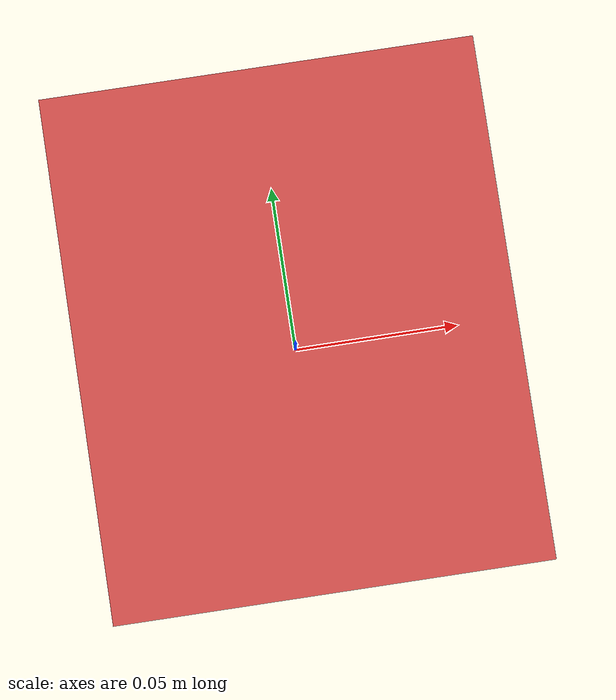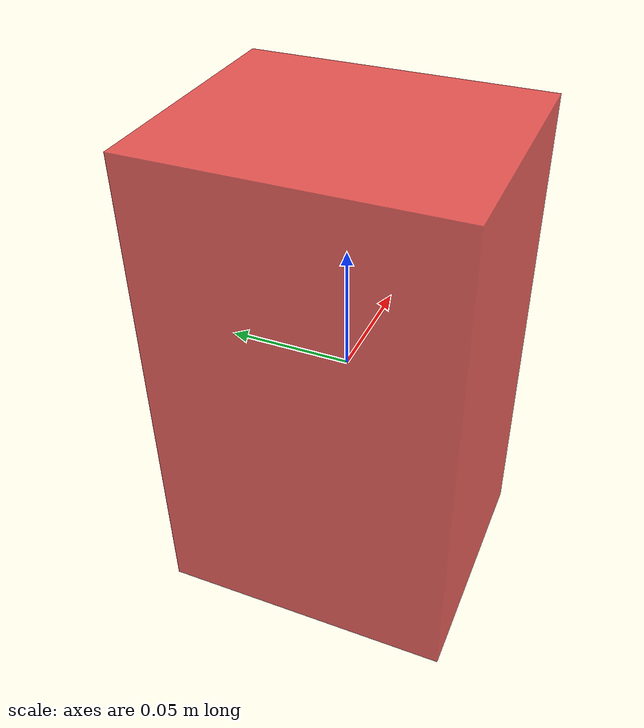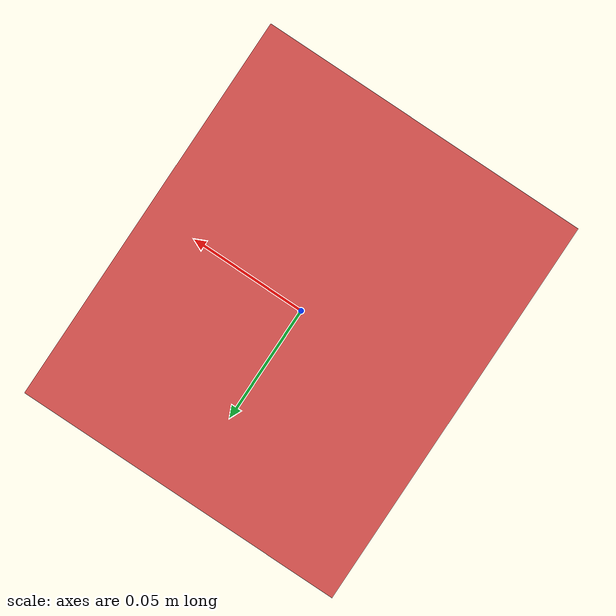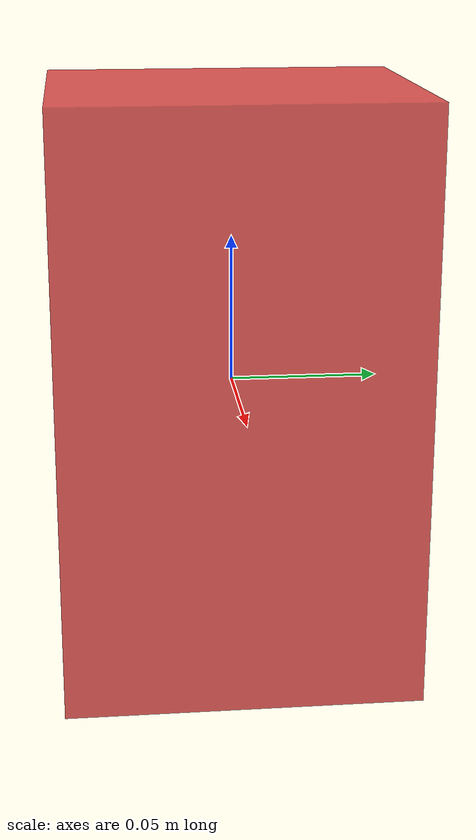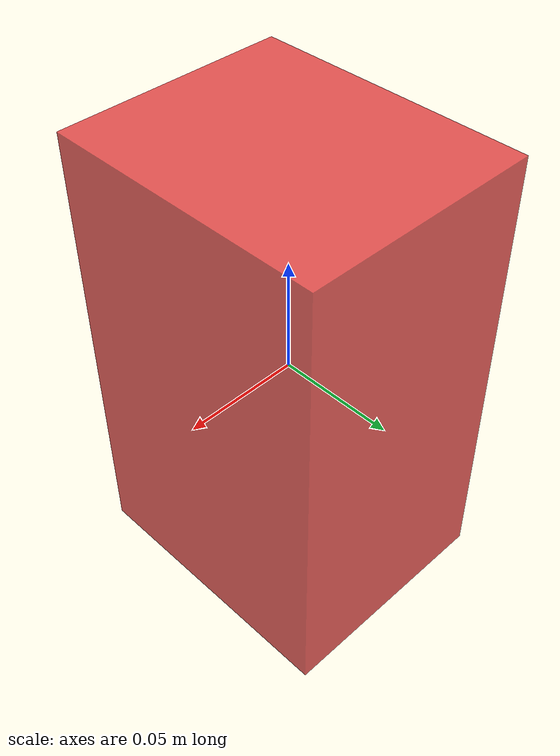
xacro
<?xml version="1.0"?>

<robot xmlns:xacro="http://www.ros.org/wiki/xacro" name="dynamic_obstacle">

  <xacro:property name="obstacle_name" value="dynamic_obstacle" />
  <xacro:property name="length" value="0.12" />
  <xacro:property name="width" value="0.1" />
  <xacro:property name="height" value="0.2" />

  <link name="${obstacle_name}/base_link">
    <visual>
      <geometry>
        <box size="${width} ${length} ${height}"/>
      </geometry>
      <material name="obstacle_color">
        <color rgba="0.9 0.2 0.2 0.8"/>
      </material>
    </visual>
    <collision>
      <geometry>
        <box size="${width} ${length} ${height}"/>
      </geometry>
    </collision>
    <inertial>
      <mass value="1.0"/>
      <origin xyz="0 0 0"/>
      <inertia ixx="0.01" ixy="0.0" ixz="0.0"
               iyy="0.01" iyz="0.0"
               izz="0.01" />
    </inertial>
  </link>

</robot>
